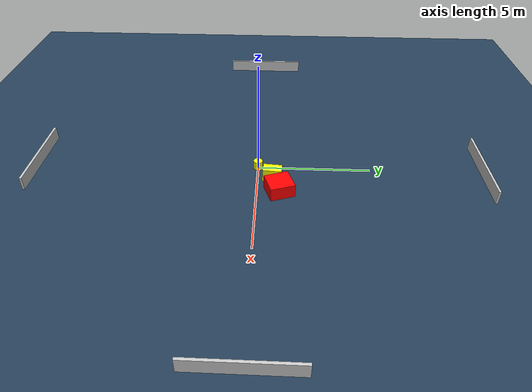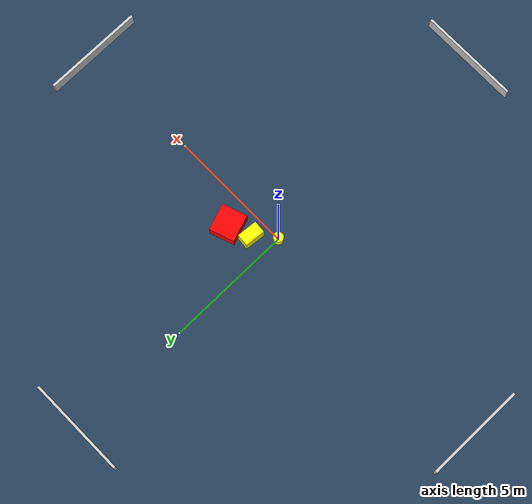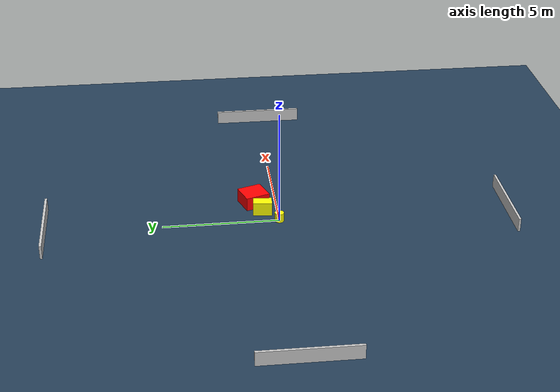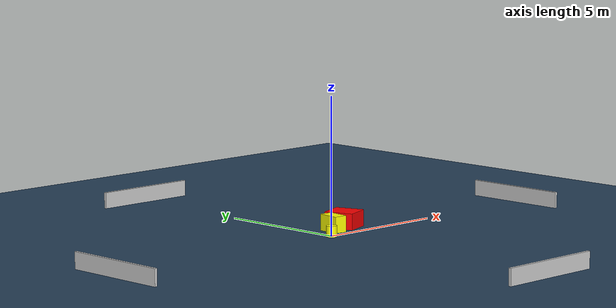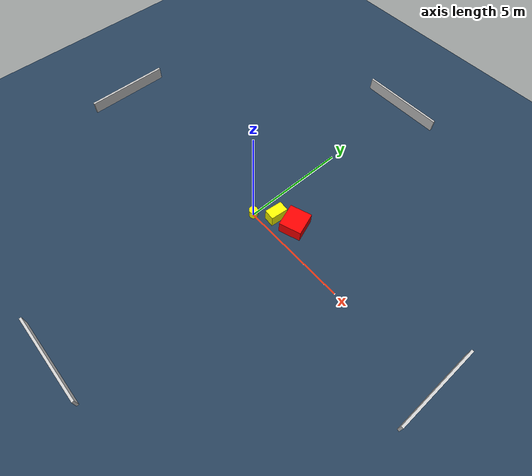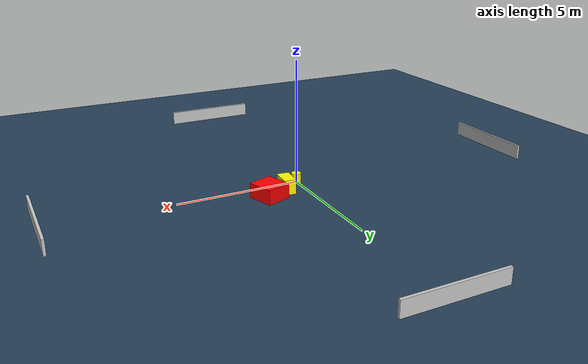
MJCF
<?xml version="1.0" ?>
<mujoco model="generated_environment">
  <option timestep="0.01" integrator="RK4" cone="elliptic"/>
  <default>
    <geom density="1"/>
  </default>
  <asset>
    <texture builtin="gradient" height="3072" name="skybox" rgb1="0.3 0.5 0.7" rgb2="0 0 0" type="skybox" width="512"/>
    <texture builtin="checker" height="300" name="groundplane" rgb1="0.2 0.3 0.4" rgb2="0.1 0.2 0.3" type="2d" width="300"/>
    <material name="groundplane" reflectance="0.2" texrepeat="5 5" texture="groundplane"/>
  </asset>
  <worldbody>
    <light dir="0 0 -1" directional="true" pos="0 0 1.5"/>
    <geom condim="3" friction="0.5 0.005 0.001" material="groundplane" name="floor" pos="0 0 0" size="0 0 0.05" type="plane"/>
    <body name="walls">
      <geom name="wall_1" condim="4" pos="-10.0 0.0 0.3" rgba="0.800000011920929 0.800000011920929 0.800000011920929 1.0" size="0.05 2.0 0.3" type="box"/>
      <geom name="wall_2" condim="4" pos="10.0 0.0 0.3" rgba="0.800000011920929 0.800000011920929 0.800000011920929 1.0" size="0.05 2.0 0.3" type="box"/>
      <geom name="wall_3" condim="4" pos="0.0 -10.0 0.3" rgba="0.800000011920929 0.800000011920929 0.800000011920929 1.0" size="2.0 0.05 0.3" type="box"/>
      <geom name="wall_4" condim="4" pos="0.0 10.0 0.3" rgba="0.800000011920929 0.800000011920929 0.800000011920929 1.0" size="2.0 0.05 0.3" type="box"/>
    </body>
    <body name="robot">
      <joint name="joint_x" type="slide" pos="0 0 0" axis="1 0 0"/>
      <joint name="joint_y" type="slide" pos="0 0 0" axis="0 1 0"/>
      <geom name="robot" type="cylinder" pos="0.0 0.0 0.2" size="0.2 0.2 0.0" mass="5.0" friction="1.0 0.005 0.0001" condim="4" rgba="1.0 1.0 0.0 1.0"/>
    </body>
    <body name="obstacle_1_movable">
      <geom name="obstacle_1_movable" condim="4" pos="0.7606727686437242 0.6596186961642857 0.3" euler="0 0 354.61877485985633" friction="0.0 0.005 0.001" rgba="1.0 1.0 0.0 1.0" size="0.2450062236519097 0.41049641682247 0.3" type="box" mass="0.1"/>
      <joint type="free"/>
    </body>
    <body name="obstacle_2_static">
      <geom name="obstacle_2_static" condim="4" pos="1.6381494146981324 0.970607466751367 0.3" euler="0 0 289.2840036873896" friction="0.0 0.005 0.001" rgba="1.0 0.0 0.0 1.0" size="0.5418058210612866 0.507347676099271 0.3" type="box"/>
    </body>
  </worldbody>
  <actuator>
    <motor name="actuator_x" joint="joint_x" gear="1" ctrlrange="-1 1"/>
    <motor name="actuator_y" joint="joint_y" gear="1" ctrlrange="-1 1"/>
  </actuator>
</mujoco>
